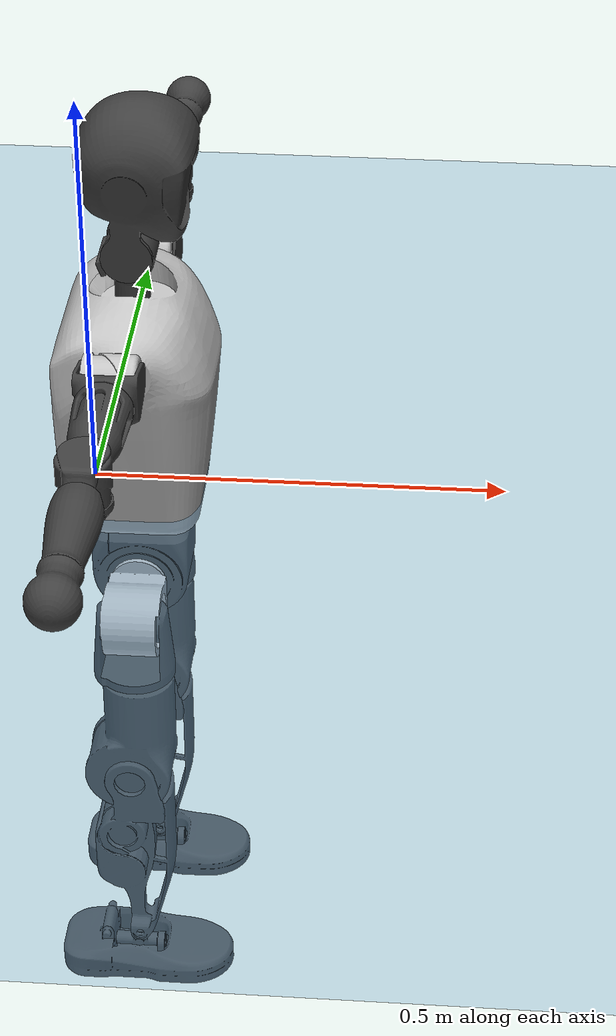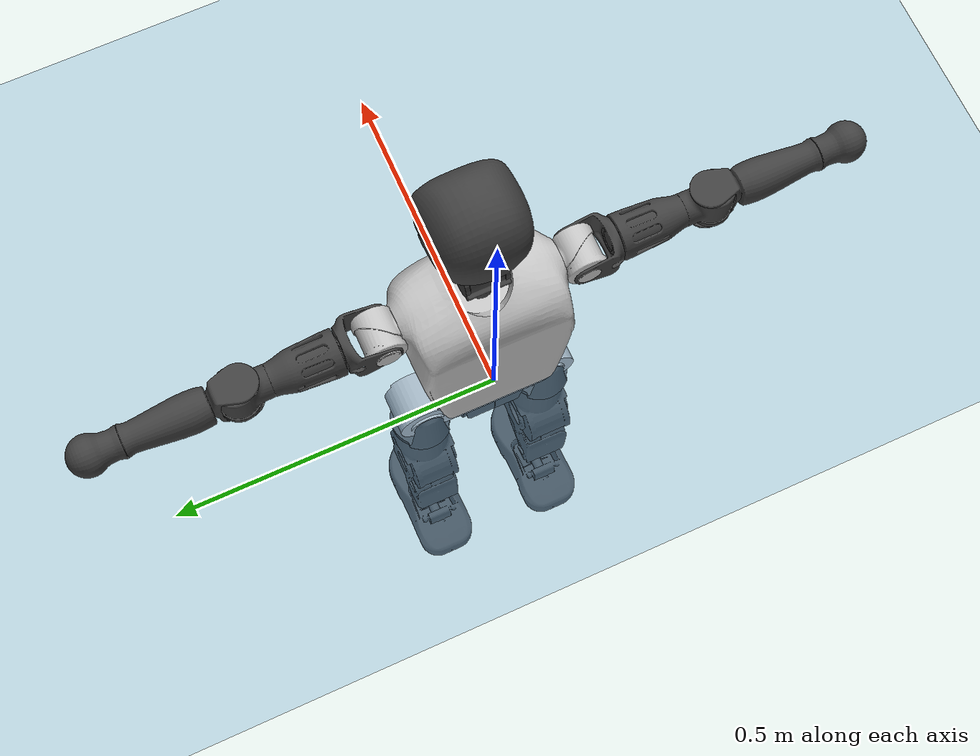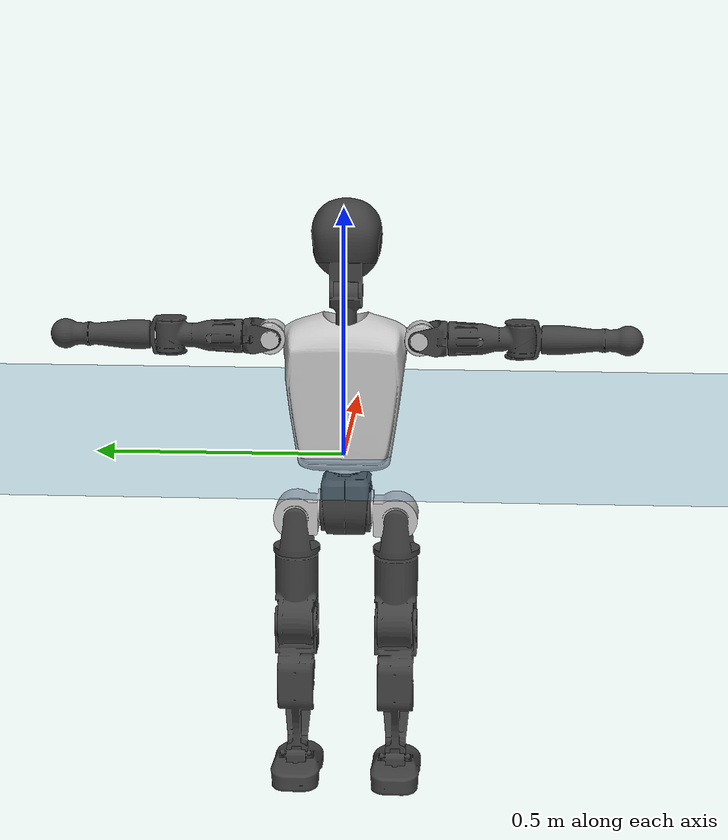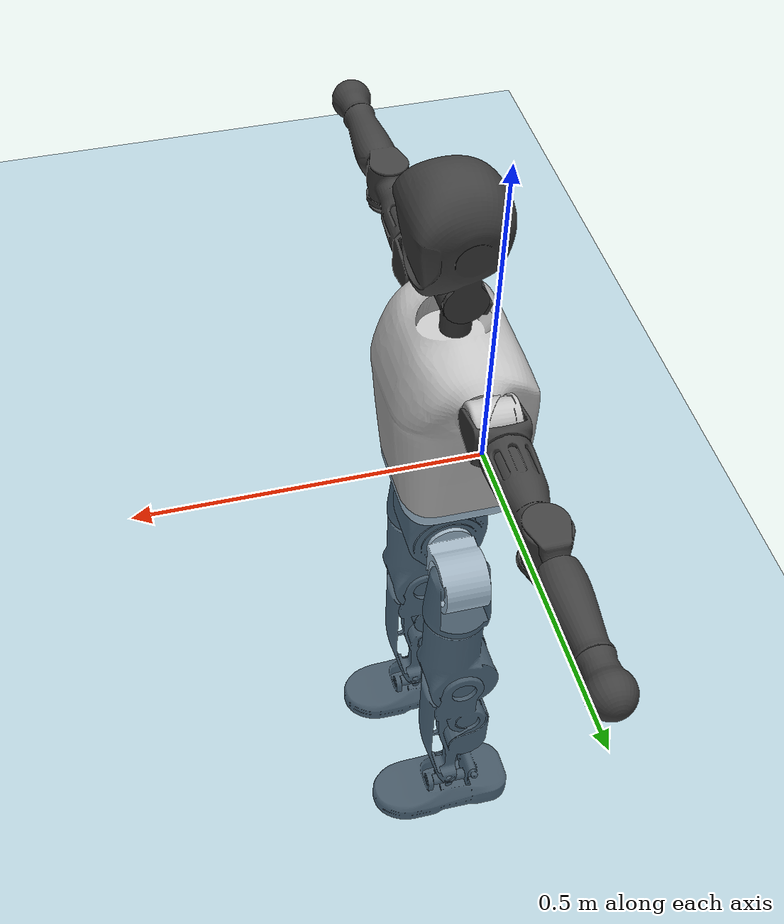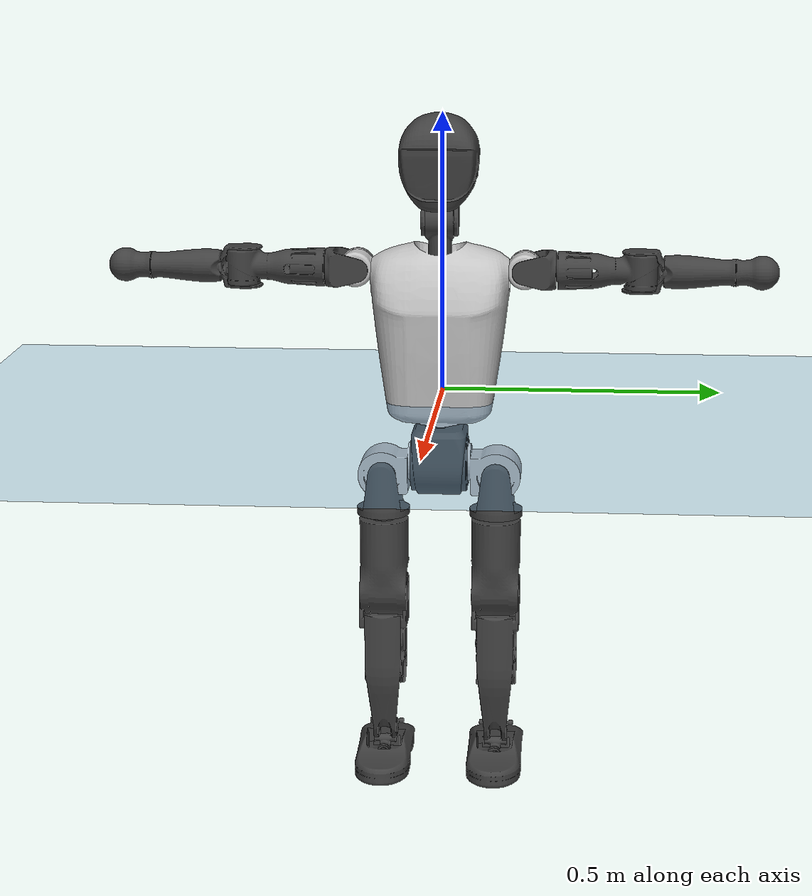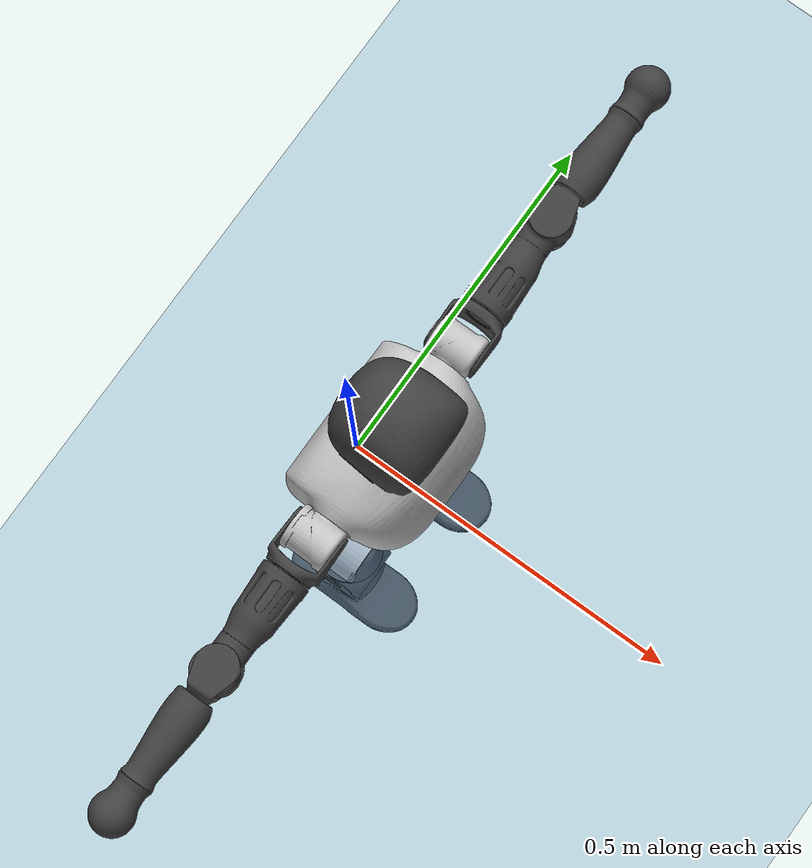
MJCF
<mujoco model="T1">
  <compiler angle="radian" assetdir="assets" balanceinertia="true" inertiafromgeom="false"/>

  <option timestep="0.005" density="1.2" viscosity="2e-05"/>

  <size nkey="1"/>

  <visual>
    <quality shadowsize="8192"/>
    <map shadowclip="0.5"/>
  </visual>

  <default>
    <default class="/">
      <joint armature="0.01" damping="0.01" frictionloss="0.1"/>
      <geom contype="0" conaffinity="0" group="1" solref="-1000 -80"/>
      <site size="0.01 0.005 0.005" group="5"/>
      <general forcelimited="true" biastype="affine" gainprm="25" biasprm="0 -25 -0.6"/>
      <default class="t1">
        <geom rgba="0.25 0.25 0.25 1"/>
        <default class="visual">
          <geom type="mesh" group="2"/>
        </default>
        <default class="collision">
          <geom group="3"/>
        </default>
        <default class="foot">
          <geom size="0.1115 0.05 0.015" type="box" condim="6" group="4" priority="1" solimp="0.015 1 0.015"/>
        </default>
        <default class="reward_collision_sphere">
          <geom group="5" rgba="1 0 0 1"/>
        </default>
      </default>
    </default>
  </default>

  <asset>
    <texture type="skybox" colorspace="auto" name="//unnamed_texture_0" builtin="gradient" rgb1="0.95 0.95 0.95" rgb2="0.95 0.95 0.95" width="100" height="600"/>
    <texture type="2d" colorspace="auto" name="texplane" builtin="checker" rgb1="0.345 0.575 0.748" rgb2="0.345 0.575 0.748" markrgb="1 1 1" width="512" height="512"/>
    <material name="MatPlane" class="/" texture="texplane" texuniform="true" texrepeat="2 2" specular="0.9"/>
    <mesh name="Trunk" class="/" file="Trunk.stl"/>
    <mesh name="H1" class="/" file="H1.stl"/>
    <mesh name="H2" class="/" file="H2.stl"/>
    <mesh name="AL1" class="/" file="AL1.stl"/>
    <mesh name="AL2" class="/" file="AL2.stl"/>
    <mesh name="AL3" class="/" file="AL3.stl"/>
    <mesh name="left_hand_link" class="/" file="left_hand_link.stl"/>
    <mesh name="AR1" class="/" file="AR1.stl"/>
    <mesh name="AR2" class="/" file="AR2.stl"/>
    <mesh name="AR3" class="/" file="AR3.stl"/>
    <mesh name="right_hand_link" class="/" file="right_hand_link.stl"/>
    <mesh name="Waist" class="/" file="Waist.stl"/>
    <mesh name="Hip_Pitch_Left" class="/" file="Hip_Pitch_Left.stl"/>
    <mesh name="Hip_Roll_Left" class="/" file="Hip_Roll_Left.stl"/>
    <mesh name="Hip_Yaw_Left" class="/" file="Hip_Yaw_Left.stl"/>
    <mesh name="Shank_Left" class="/" file="Shank_Left.stl"/>
    <mesh name="Ankle_Cross_Left" class="/" file="Ankle_Cross_Left.stl"/>
    <mesh name="left_foot_link" class="/" file="left_foot_link.stl"/>
    <mesh name="Hip_Pitch_Right" class="/" file="Hip_Pitch_Right.stl"/>
    <mesh name="Hip_Roll_Right" class="/" file="Hip_Roll_Right.stl"/>
    <mesh name="Hip_Yaw_Right" class="/" file="Hip_Yaw_Right.stl"/>
    <mesh name="Shank_Right" class="/" file="Shank_Right.stl"/>
    <mesh name="Ankle_Cross_Right" class="/" file="Ankle_Cross_Right.stl"/>
    <mesh name="right_foot_link" class="/" file="right_foot_link.stl"/>
  </asset>

  <worldbody>
    <geom name="floor" class="/" size="100 100 0.125" type="plane" group="0" material="MatPlane"/>
    <light name="toplight_shadow" class="/" pos="0 0 5" dir="0.0990148 0.0990148 -0.990148" type="directional" ambient="0.04 0.04 0.04" diffuse="0.55 0.55 0.55" specular="0.12 0.12 0.12"/>
    <light name="toplight_fill" class="/" pos="0 0 5" dir="0.0990148 0.0990148 -0.990148" type="directional" castshadow="false" ambient="0.04 0.04 0.04" diffuse="0.3 0.3 0.3" specular="0.08 0.08 0.08"/>
    <body name="trunk" childclass="t1" pos="0.000316065 0.000900951 2.67071e-05" quat="1 0.000181695 -1.22513e-05 -0.000211604">
      <inertial pos="0.0483768 -0.000508402 0.111352" quat="0.999956 0.000524371 -0.00926005 0.00103585" mass="10.6099" diaginertia="0.0493733 0.0639116 0.0703966"/>
      <joint name="//unnamed_joint_0" type="free" armature="0" damping="0" frictionloss="0"/>
      <geom name="//unnamed_geom_1" class="visual" rgba="0.76 0.76 0.76 1" mesh="Trunk"/>
      <geom name="//unnamed_geom_2" class="collision" size="0.0724744 0.0966325 0.144949" pos="0.0531123 0 0.126194" type="box"/>
      <geom name="//unnamed_geom_3" class="reward_collision_sphere" size="0.111127" pos="0.0531123 0 0.105162"/>
      <geom name="//unnamed_geom_4" class="reward_collision_sphere" size="0.0144949" pos="0.0531123 0.0817829 0"/>
      <geom name="//unnamed_geom_5" class="reward_collision_sphere" size="0.0144949" pos="0.0531123 -0.0817829 0"/>
      <geom name="//unnamed_geom_6" class="reward_collision_sphere" size="0.0144949" pos="0.0531123 0.10295 0.189291"/>
      <geom name="//unnamed_geom_7" class="reward_collision_sphere" size="0.0144949" pos="0.0531123 -0.10295 0.189291"/>
      <site name="imu" pos="-0.0035641 0.00193186 0.00352876" size="0.00966325"/>
      <camera name="track" pos="0 -1.9243 0" quat="0.707107 0.707107 0 0" mode="trackcom"/>
      <camera name="ego_camera" pos="0.107995 0 0.44168" quat="-0.5 -0.5 0.5 0.5"/>
      <body name="H1" pos="0.055948 -0.00103784 0.254591" quat="1 -3.57017e-05 -0.000152674 -0.00029151">
        <inertial pos="-0.00015668 -0.000831373 0.0595702" quat="0.76535 -0.0128657 0.00200382 0.643482" mass="0.391165" diaginertia="0.000128021 0.0001804 0.000191626"/>
        <joint name="AAHead_yaw" pos="0 0 0" axis="-0.0020714 0.00173726 0.999996" range="-1.57228 1.56129" armature="0.0101175" damping="0.00988082" frictionloss="0.0969312"/>
        <geom name="//unnamed_geom_8" class="visual" mesh="H1"/>
        <body name="H2" pos="-0.00131124 0.000464669 0.064341" quat="1 -0.000137348 0.000214648 0.000136986">
          <inertial pos="0.00573419 0.000980765 0.103996" quat="0.988581 0.107152 -0.0725 -0.0772685" mass="0.569509" diaginertia="0.00110912 0.00158894 0.00222002"/>
          <joint name="Head_pitch" pos="0 0 0" axis="-0.00369618 -0.999992 0.00138451" range="-1.21997 0.349746" armature="0.00935078" damping="0.00606593" frictionloss="0.102937"/>
          <geom name="//unnamed_geom_9" class="visual" mesh="H2"/>
          <geom name="//unnamed_geom_10" class="collision" size="0.077306" pos="0.00885206 0 0.115678"/>
          <geom name="//unnamed_geom_11" class="reward_collision_sphere" size="0.0869693" pos="0.0177041 0 0.105162"/>
        </body>
      </body>
      <body name="AL1" pos="0.0518428 0.102022 0.229364" quat="1 -3.20019e-06 0.000468727 4.97305e-05">
        <inertial pos="-0.0014247 0.0432093 3.02622e-06" quat="0.503962 0.495706 -0.504254 0.49601" mass="0.474529" diaginertia="0.00074021 0.00105828 0.000376462"/>
        <joint name="Left_Shoulder_Pitch" pos="0 0 0" axis="0.00537796 0.999985 -0.00126285" stiffness="0.000112354" range="-3.30946 1.23775" armature="0.00941374" damping="0.00826532" frictionloss="0.0976027"/>
        <geom name="//unnamed_geom_12" class="visual" rgba="0.76 0.76 0.76 1" mesh="AL1"/>
        <body name="AL2" pos="0.00111868 0.0457981 0.000596447" quat="1 9.89924e-05 -7.31848e-05 -1.17412e-06">
          <inertial pos="0.00251479 0.0372816 -7.74467e-05" quat="0.487643 0.512408 -0.489193 0.510227" mass="0.14617" diaginertia="0.000219673 0.000285459 0.000228496"/>
          <joint name="Left_Shoulder_Roll" pos="0 0 0" axis="-0.999994 -0.00334339 0.00110633" range="-1.56877 1.74767" armature="0.00953515" damping="0.00615451" frictionloss="0.0956331"/>
          <geom name="//unnamed_geom_13" class="visual" mesh="AL2"/>
          <body name="AL3" pos="0.00051113 0.0587565 -0.000469332" quat="1 -5.38466e-05 -0.000185995 3.61494e-05">
            <inertial pos="0.00068513 0.0821619 -0.000193204" quat="0.706532 0.70767 6.19014e-05 0.00389515" mass="0.916733" diaginertia="0.00687346 0.010475 0.000780782"/>
            <joint name="Left_Elbow_Pitch" pos="0 0 0" axis="0.000739758 -1 0.000269278" range="-2.2699 2.25784" armature="0.00971192" damping="0.0161732" frictionloss="0.101025"/>
            <geom name="//unnamed_geom_14" class="visual" mesh="AL3"/>
            <geom name="//unnamed_geom_15" class="collision" size="0.0289898 0.0724744" pos="0 0.0481076 0" quat="0.707105 0.707108 0 0" type="cylinder"/>
            <geom name="//unnamed_geom_16" class="reward_collision_sphere" size="0.0347877"/>
            <body name="left_hand_link" pos="0.000846212 0.141055 -0.000223772" quat="1 -0.000165339 7.32888e-05 0.00010019">
              <inertial pos="0.000294982 0.10635 0.000424179" quat="0.707602 0.706611 0.000278702 0.000757452" mass="0.294733" diaginertia="0.00440789 0.00672913 0.000275322"/>
              <joint name="Left_Elbow_Yaw" pos="0 0 0" axis="0.00027725 0.00153508 0.999999" stiffness="0.00150869" range="-2.44304 -0.003596" armature="0.00919603" damping="0.00759794" frictionloss="0.0966561"/>
              <geom name="//unnamed_geom_17" class="visual" mesh="left_hand_link"/>
              <geom name="//unnamed_geom_18" class="collision" size="0.0289898 0.0845535" pos="0 0.12508 0" quat="0.707105 0.707108 0 0" type="cylinder"/>
              <geom name="//unnamed_geom_19" class="reward_collision_sphere" size="0.0483163"/>
              <geom name="//unnamed_geom_20" class="reward_collision_sphere" size="0.0338214" pos="0 0.105837 0"/>
              <geom name="//unnamed_geom_21" class="reward_collision_sphere" size="0.0338214" pos="0 0.206863 0"/>
            </body>
          </body>
        </body>
      </body>
      <body name="AR1" pos="0.050044 -0.102949 0.230321" quat="1 -0.000488519 0.000244697 -0.000228901">
        <inertial pos="-0.000639704 -0.0426516 -0.00087375" quat="0.504294 0.495654 -0.504243 0.495736" mass="0.482752" diaginertia="0.000754262 0.00107793 0.000378826"/>
        <joint name="Right_Shoulder_Pitch" pos="0 0 0" axis="-0.00268304 -0.999996 0.00121187" range="-1.24391 3.3123" armature="0.00976668" damping="0.00493359" frictionloss="0.100306"/>
        <geom name="//unnamed_geom_22" class="visual" rgba="0.76 0.76 0.76 1" mesh="AR1"/>
        <body name="AR2" pos="-0.00055308 -0.0447963 -0.000451103" quat="1 5.51891e-05 -8.07685e-05 3.93507e-05">
          <inertial pos="0.00393263 -0.0367294 6.99089e-05" quat="0.511172 0.490839 -0.511401 0.486055" mass="0.145482" diaginertia="0.000219813 0.000283992 0.000228687"/>
          <joint name="Right_Shoulder_Roll" pos="0 0 0" axis="-0.999944 0.0105562 0.000890917" range="-1.72425 1.58784" armature="0.00968871" damping="0.00660058" frictionloss="0.0949579"/>
          <geom name="//unnamed_geom_23" class="visual" mesh="AR2"/>
          <body name="AR3" pos="0.000433003 -0.0582225 0.000210072" quat="1 -7.93019e-05 0.00010992 1.1434e-05">
            <inertial pos="0.000895468 -0.0824028 -0.00084286" quat="0.707336 0.706874 0.00163705 0.00179843" mass="0.923414" diaginertia="0.00715464 0.0108391 0.000820866"/>
            <joint name="Right_Elbow_Pitch" pos="0 0 0" axis="0.00292227 0.999987 0.00428553" range="-2.26312 2.23937" armature="0.00961628" damping="0.00611988" frictionloss="0.0923247"/>
            <geom name="//unnamed_geom_24" class="visual" mesh="AR3"/>
            <geom name="//unnamed_geom_25" class="collision" size="0.0289898 0.0724744" pos="0 -0.0481076 0" quat="0.707105 0.707108 0 0" type="cylinder"/>
            <geom name="//unnamed_geom_26" class="reward_collision_sphere" size="0.0347877"/>
            <body name="right_hand_link" pos="0.000548371 -0.140523 -0.000258417" quat="1 -1.00995e-05 2.28161e-05 -1.98589e-05">
              <inertial pos="0.000481521 -0.105746 0.000882021" quat="0.706378 0.707835 0.000533942 0.000879856" mass="0.290985" diaginertia="0.00429562 0.00667618 0.000274479"/>
              <joint name="Right_Elbow_Yaw" pos="0 0 0" axis="-0.000983835 0.000830863 0.999999" stiffness="0.00117223" range="-0.00107688 2.43536" armature="0.00985625" damping="0.00777368" frictionloss="0.0958781"/>
              <geom name="//unnamed_geom_27" class="visual" mesh="right_hand_link"/>
              <geom name="//unnamed_geom_28" class="collision" size="0.0289898 0.0845535" pos="0 -0.12508 0" quat="0.707105 0.707108 0 0" type="cylinder"/>
              <geom name="//unnamed_geom_29" class="reward_collision_sphere" size="0.0483163"/>
              <geom name="//unnamed_geom_30" class="reward_collision_sphere" size="0.0338214" pos="0 -0.105837 0"/>
              <geom name="//unnamed_geom_31" class="reward_collision_sphere" size="0.0338214" pos="0 -0.206863 0"/>
            </body>
          </body>
        </body>
      </body>
      <body name="Waist" pos="0.056098 -0.0017702 -0.122208" quat="1 -0.00013172 6.18306e-05 0.000208757">
        <inertial pos="0.00150584 -0.000847815 0.00736435" quat="0.984037 -0.00151845 -0.177949 0.00193647" mass="2.35885" diaginertia="0.00294983 0.00446934 0.00620252"/>
        <joint name="Waist" pos="0 0 0" axis="0.000276382 -0.00275848 0.999996" range="-1.55457 1.58404" armature="0.00971403" damping="0.00289428" frictionloss="0.0921978"/>
        <geom name="//unnamed_geom_32" class="visual" mesh="Waist"/>
        <body name="Hip_Pitch_Left" pos="-8.25816e-05 0.102635 0.000379251" quat="1 -2.03365e-06 0.000318261 0.000423589">
          <inertial pos="0.00116243 -0.00710077 -0.0195118" quat="0.975167 0.221038 0.0135198 0.00310325" mass="0.930932" diaginertia="0.000992235 0.00121719 0.00163092"/>
          <joint name="Left_Hip_Pitch" pos="0 0 0" axis="-0.0015035 0.999996 0.00226597" range="-1.78973 1.57373" armature="0.0095517" damping="0.00791382" frictionloss="0.096241"/>
          <geom name="//unnamed_geom_33" class="visual" rgba="0.76 0.76 0.76 1" mesh="Hip_Pitch_Left"/>
          <body name="Hip_Roll_Left" pos="0.00127689 -0.000540769 -0.0210567" quat="1 -0.000167747 0.000128015 0.000206877">
            <inertial pos="0.000791127 -0.000478873 -0.0564614" quat="0.706178 -0.00569641 -0.00706383 0.707977" mass="0.35286" diaginertia="0.000947404 0.00124975 0.000657684"/>
            <joint name="Left_Hip_Roll" pos="0 0 0" axis="-0.999996 0.0014053 -0.00233801" range="-1.55514 0.21392" armature="0.00993578" damping="0.00856807" frictionloss="0.0978236"/>
            <geom name="//unnamed_geom_34" class="visual" mesh="Hip_Roll_Left"/>
            <geom name="//unnamed_geom_35" class="reward_collision_sphere" size="0.0531479"/>
            <body name="Hip_Yaw_Left" pos="0.000484133 -1.81358e-05 -0.0850649" quat="1 1.70372e-06 3.34295e-05 -6.9641e-07">
              <inertial pos="-0.0051634 -0.000528239 -0.0942717" quat="0.696811 -0.0337813 -0.0317286 0.715756" mass="1.94108" diaginertia="0.0137925 0.0204118 0.00326014"/>
              <joint name="Left_Hip_Yaw" pos="0 0 0" axis="-0.000794307 -0.000652303 -0.999999" stiffness="0.000512656" range="-1.01667 1.03361" armature="0.00917655" damping="0.000639637" frictionloss="0.0969596"/>
              <geom name="//unnamed_geom_36" class="visual" mesh="Hip_Yaw_Left"/>
              <geom name="//unnamed_geom_37" class="collision" size="0.0483163 0.077306" type="cylinder"/>
              <body name="Shank_Left" pos="-0.0118131 0.000325073 -0.142094" quat="1 -3.07072e-05 -0.000391404 7.74545e-05">
                <inertial pos="-0.00526357 0.000440925 -0.13071" quat="0.997655 0.00208122 -0.025282 0.0635636" mass="1.58465" diaginertia="0.01907 0.028782 0.0024393"/>
                <joint name="Left_Knee_Pitch" pos="0 0 0" axis="0.00173511 0.999998 0.00119424" range="-0.0208784 2.33468" armature="0.00977082" damping="0.0151133" frictionloss="0.0968139"/>
                <geom name="//unnamed_geom_38" class="visual" mesh="Shank_Left"/>
                <geom name="//unnamed_geom_39" class="collision" size="0.0483163 0.0724744" pos="0 0 -0.126194" type="cylinder"/>
                <geom name="//unnamed_geom_40" class="reward_collision_sphere" size="0.0628111"/>
                <body name="Ankle_Cross_Left" pos="0.000993873 0.000465779 -0.294655" quat="1 -3.33417e-06 2.08784e-06 5.62374e-07">
                  <inertial pos="-0.00370138 0.000746232 -0.00829561" quat="0.443451 0.550693 0.551086 0.443162" mass="0.0663535" diaginertia="1.5592e-05 2.09619e-05 1.45667e-05"/>
                  <joint name="Left_Ankle_Pitch" pos="0 0 0" axis="-0.000817462 0.999999 -0.00112586" range="-0.854564 0.356387" armature="0.0095826" damping="0.0059903" frictionloss="0.0921485"/>
                  <geom name="//unnamed_geom_41" class="visual" mesh="Ankle_Cross_Left"/>
                  <body name="left_foot_link" pos="-1.83883e-05 -0.000794763 -0.0119871" quat="1 -0.000317298 3.74919e-05 -0.000430845">
                    <inertial pos="-0.000761633 0.000318431 -0.00907053" quat="-0.00142663 0.619773 -0.00425229 0.784769" mass="0.626564" diaginertia="0.00145318 0.00198115 0.0028117"/>
                    <joint name="Left_Ankle_Roll" pos="0 0 0" axis="-0.999998 -0.00182798 0.00113749" range="-0.448507 0.427476" armature="0.00917944" damping="0.0073371" frictionloss="0.0942883"/>
                    <geom name="//unnamed_geom_42" class="visual" mesh="left_foot_link"/>
                    <geom name="left_foot" class="foot" size="0.10148 0.0503821 0.0146098" pos="0.00885206 0 -0.0157743"/>
                    <geom name="//unnamed_geom_44" class="reward_collision_sphere" size="0.0502489" pos="0.00885206 0 -0.0157743"/>
                    <geom name="//unnamed_geom_45" class="reward_collision_sphere" size="0.0289898" pos="0.0840945 -0.0221295 -0.0157743"/>
                    <geom name="//unnamed_geom_46" class="reward_collision_sphere" size="0.0289898" pos="-0.0619644 -0.0221295 -0.0157743"/>
                    <site name="left_foot" class="foot" pos="0.00885206 0 -0.0157743" size="0.00966325"/>
                  </body>
                </body>
              </body>
            </body>
          </body>
        </body>
        <body name="Hip_Pitch_Right" pos="-0.000978377 -0.102176 -0.000259006" quat="1 0.000284075 0.00014705 1.4989e-05">
          <inertial pos="5.98411e-05 0.00780593 -0.0198116" quat="0.973597 -0.227738 0.0153053 -0.00324295" mass="0.918415" diaginertia="0.000985671 0.00120317 0.00159019"/>
          <joint name="Right_Hip_Pitch" pos="0 0 0" axis="0.000221604 -1 0.00042028" stiffness="0.00346902" range="-1.56391 1.80114" armature="0.00928044" damping="0.00891265" frictionloss="0.0999966"/>
          <geom name="//unnamed_geom_47" class="visual" rgba="0.76 0.76 0.76 1" mesh="Hip_Pitch_Right"/>
          <body name="Hip_Roll_Right" pos="0.000752832 -0.000639564 -0.0208754" quat="1 -1.82989e-05 -3.23851e-05 3.02611e-06">
            <inertial pos="0.001198 -0.000622742 -0.0570864" quat="0.707011 -0.00470597 -0.00679072 0.707155" mass="0.345882" diaginertia="0.00093748 0.00123011 0.000653341"/>
            <joint name="Right_Hip_Roll" pos="0 0 0" axis="-0.999999 9.65119e-05 -0.00160903" stiffness="0.00174247" range="-0.201122 1.54894" armature="0.00992" damping="0.00237292" frictionloss="0.092811"/>
            <geom name="//unnamed_geom_48" class="visual" mesh="Hip_Roll_Right"/>
            <geom name="//unnamed_geom_49" class="reward_collision_sphere" size="0.0531479"/>
            <body name="Hip_Yaw_Right" pos="0.00123078 0.000638693 -0.0866793" quat="1 0.000332783 0.000270123 -0.000214637">
              <inertial pos="-0.00642878 0.000566901 -0.0947101" quat="0.717675 -0.033395 -0.0373197 0.694575" mass="1.94167" diaginertia="0.0138155 0.020626 0.00329442"/>
              <joint name="Right_Hip_Yaw" pos="0 0 0" axis="-0.0013309 -0.000510768 -0.999999" range="-1.00021 1.00851" armature="0.00989423" damping="0.00405199" frictionloss="0.0965801"/>
              <geom name="//unnamed_geom_50" class="visual" mesh="Hip_Yaw_Right"/>
              <geom name="//unnamed_geom_51" class="collision" size="0.0483163 0.077306" type="cylinder"/>
              <body name="Shank_Right" pos="-0.0109631 -0.00101975 -0.140411" quat="1 -0.000154298 -0.000361244 -0.000174806">
                <inertial pos="-0.00621161 -0.00028244 -0.128566" quat="0.999321 -0.000759147 -0.0247043 -0.0273116" mass="1.64275" diaginertia="0.0191793 0.0289588 0.0025187"/>
                <joint name="Right_Knee_Pitch" pos="0 0 0" axis="0.00296458 -0.999988 -0.00393323" range="-2.34587 -0.0195566" armature="0.00971693" damping="0.0107069" frictionloss="0.0979"/>
                <geom name="//unnamed_geom_52" class="visual" mesh="Shank_Right"/>
                <geom name="//unnamed_geom_53" class="collision" size="0.0483163 0.0724744" pos="0 0 -0.126194" type="cylinder"/>
                <geom name="//unnamed_geom_54" class="reward_collision_sphere" size="0.0628111"/>
                <body name="Ankle_Cross_Right" pos="-0.00146848 -0.000907312 -0.294965" quat="1 8.49097e-07 9.35148e-06 1.42653e-05">
                  <inertial pos="-0.0034828 0.000111599 -0.00808171" quat="0.443172 0.551181 0.551009 0.44293" mass="0.0657392" diaginertia="1.5467e-05 2.11453e-05 1.46508e-05"/>
                  <joint name="Right_Ankle_Pitch" pos="0 0 0" axis="-0.00317831 -0.999992 0.00256497" range="-0.377409 0.87273" armature="0.0095078" damping="0.00913605" frictionloss="0.0943287"/>
                  <geom name="//unnamed_geom_55" class="visual" mesh="Ankle_Cross_Right"/>
                  <body name="right_foot_link" pos="9.28152e-05 -0.000468232 -0.0133855" quat="1 8.07669e-05 -7.79961e-05 8.48738e-05">
                    <inertial pos="-4.05691e-05 -0.000277156 -0.00968614" quat="-0.00418172 0.620572 -0.00147155 0.784137" mass="0.627523" diaginertia="0.00145845 0.00196019 0.00279742"/>
                    <joint name="Right_Ankle_Roll" pos="0 0 0" axis="-1 -0.000138167 -0.000196112" range="-0.44976 0.45748" armature="0.00957212" damping="0.00734164" frictionloss="0.0920802"/>
                    <geom name="//unnamed_geom_56" class="visual" mesh="right_foot_link"/>
                    <geom name="right_foot" class="foot" size="0.0982477 0.0453908 0.0144503" pos="0.00885206 0 -0.0157743"/>
                    <geom name="//unnamed_geom_58" class="reward_collision_sphere" size="0.038653"/>
                    <geom name="//unnamed_geom_59" class="reward_collision_sphere" size="0.0289898" pos="0.00885206 0 -0.0157743"/>
                    <geom name="//unnamed_geom_60" class="reward_collision_sphere" size="0.0289898" pos="0.0840945 0.0221295 -0.0157743"/>
                    <geom name="//unnamed_geom_61" class="reward_collision_sphere" size="0.0289898" pos="-0.0619644 0.0221295 -0.0157743"/>
                    <site name="right_foot" class="foot" pos="0.00885206 0 -0.0157743" size="0.00966325"/>
                  </body>
                </body>
              </body>
            </body>
          </body>
        </body>
      </body>
    </body>
  </worldbody>

  <contact>
    <pair class="/" geom1="floor" geom2="left_foot" name="//unnamed_contact_0"/>
    <pair class="/" geom1="floor" geom2="right_foot" name="//unnamed_contact_1"/>
  </contact>

  <actuator>
    <general name="AAHead_yaw" class="/" joint="AAHead_yaw" forcerange="-6.79099 6.79099" gainprm="23.4288" biasprm="0 -23.4288 -0.55305"/>
    <general name="Head_pitch" class="/" joint="Head_pitch" forcerange="-6.72955 6.72955" gainprm="23.4288" biasprm="0 -23.4288 -0.55305"/>
    <general name="Left_Shoulder_Pitch" class="/" joint="Left_Shoulder_Pitch" forcerange="-16.3986 16.3986" gainprm="23.4288" biasprm="0 -23.4288 -0.55305"/>
    <general name="Left_Shoulder_Roll" class="/" joint="Left_Shoulder_Roll" forcerange="-17.1446 17.1446" gainprm="23.4288" biasprm="0 -23.4288 -0.55305"/>
    <general name="Left_Elbow_Pitch" class="/" joint="Left_Elbow_Pitch" forcerange="-18.0171 18.0171" gainprm="23.4288" biasprm="0 -23.4288 -0.55305"/>
    <general name="Left_Elbow_Yaw" class="/" joint="Left_Elbow_Yaw" forcerange="-17.4845 17.4845" gainprm="23.4288" biasprm="0 -23.4288 -0.55305"/>
    <general name="Right_Shoulder_Pitch" class="/" joint="Right_Shoulder_Pitch" forcerange="-17.2235 17.2235" gainprm="23.4288" biasprm="0 -23.4288 -0.55305"/>
    <general name="Right_Shoulder_Roll" class="/" joint="Right_Shoulder_Roll" forcerange="-17.2573 17.2573" gainprm="23.4288" biasprm="0 -23.4288 -0.55305"/>
    <general name="Right_Elbow_Pitch" class="/" joint="Right_Elbow_Pitch" forcerange="-18.0611 18.0611" gainprm="23.4288" biasprm="0 -23.4288 -0.55305"/>
    <general name="Right_Elbow_Yaw" class="/" joint="Right_Elbow_Yaw" forcerange="-17.9144 17.9144" gainprm="23.4288" biasprm="0 -23.4288 -0.55305"/>
    <general name="Waist" class="/" joint="Waist" forcerange="-30.1217 30.1217" gainprm="23.4288" biasprm="0 -23.4288 -0.55305"/>
    <general name="Left_Hip_Pitch" class="/" joint="Left_Hip_Pitch" forcerange="-43.6292 43.6292" gainprm="23.4288" biasprm="0 -23.4288 -0.55305"/>
    <general name="Left_Hip_Roll" class="/" joint="Left_Hip_Roll" forcerange="-29.9725 29.9725" gainprm="23.4288" biasprm="0 -23.4288 -0.55305"/>
    <general name="Left_Hip_Yaw" class="/" joint="Left_Hip_Yaw" forcerange="-30.03 30.03" gainprm="23.4288" biasprm="0 -23.4288 -0.55305"/>
    <general name="Left_Knee_Pitch" class="/" joint="Left_Knee_Pitch" forcerange="-56.4159 56.4159" gainprm="23.4288" biasprm="0 -23.4288 -0.55305"/>
    <general name="Left_Ankle_Pitch" class="/" joint="Left_Ankle_Pitch" forcerange="-19.8902 19.8902" gainprm="23.4288" biasprm="0 -23.4288 -0.55305"/>
    <general name="Left_Ankle_Roll" class="/" joint="Left_Ankle_Roll" forcerange="-14.351 14.351" gainprm="23.4288" biasprm="0 -23.4288 -0.55305"/>
    <general name="Right_Hip_Pitch" class="/" joint="Right_Hip_Pitch" forcerange="-43.0052 43.0052" gainprm="23.4288" biasprm="0 -23.4288 -0.55305"/>
    <general name="Right_Hip_Roll" class="/" joint="Right_Hip_Roll" forcerange="-29.2805 29.2805" gainprm="23.4288" biasprm="0 -23.4288 -0.55305"/>
    <general name="Right_Hip_Yaw" class="/" joint="Right_Hip_Yaw" forcerange="-29.5981 29.5981" gainprm="23.4288" biasprm="0 -23.4288 -0.55305"/>
    <general name="Right_Knee_Pitch" class="/" joint="Right_Knee_Pitch" forcerange="-59.5244 59.5244" gainprm="23.4288" biasprm="0 -23.4288 -0.55305"/>
    <general name="Right_Ankle_Pitch" class="/" joint="Right_Ankle_Pitch" forcerange="-19.5988 19.5988" gainprm="23.4288" biasprm="0 -23.4288 -0.55305"/>
    <general name="Right_Ankle_Roll" class="/" joint="Right_Ankle_Roll" forcerange="-14.4399 14.4399" gainprm="23.4288" biasprm="0 -23.4288 -0.55305"/>
  </actuator>

  <sensor>
    <gyro site="imu" name="imu_angular_velocity"/>
    <velocimeter site="imu" name="imu_linear_velocity"/>
    <framelinvel objtype="site" objname="left_foot" name="left_foot_global_linear_velocity"/>
    <framelinvel objtype="site" objname="right_foot" name="right_foot_global_linear_velocity"/>
  </sensor>

  <keyframe>
    <key name="home" qpos="0 0 0.6385 1 0 0 0 0 0 0 1.4 0 -0.4 0 -1.4 0 0.4 0 -0.4 0 0 0.8 -0.4 0 0.4 0 0 -0.8 0.4 0"/>
  </keyframe>
</mujoco>
